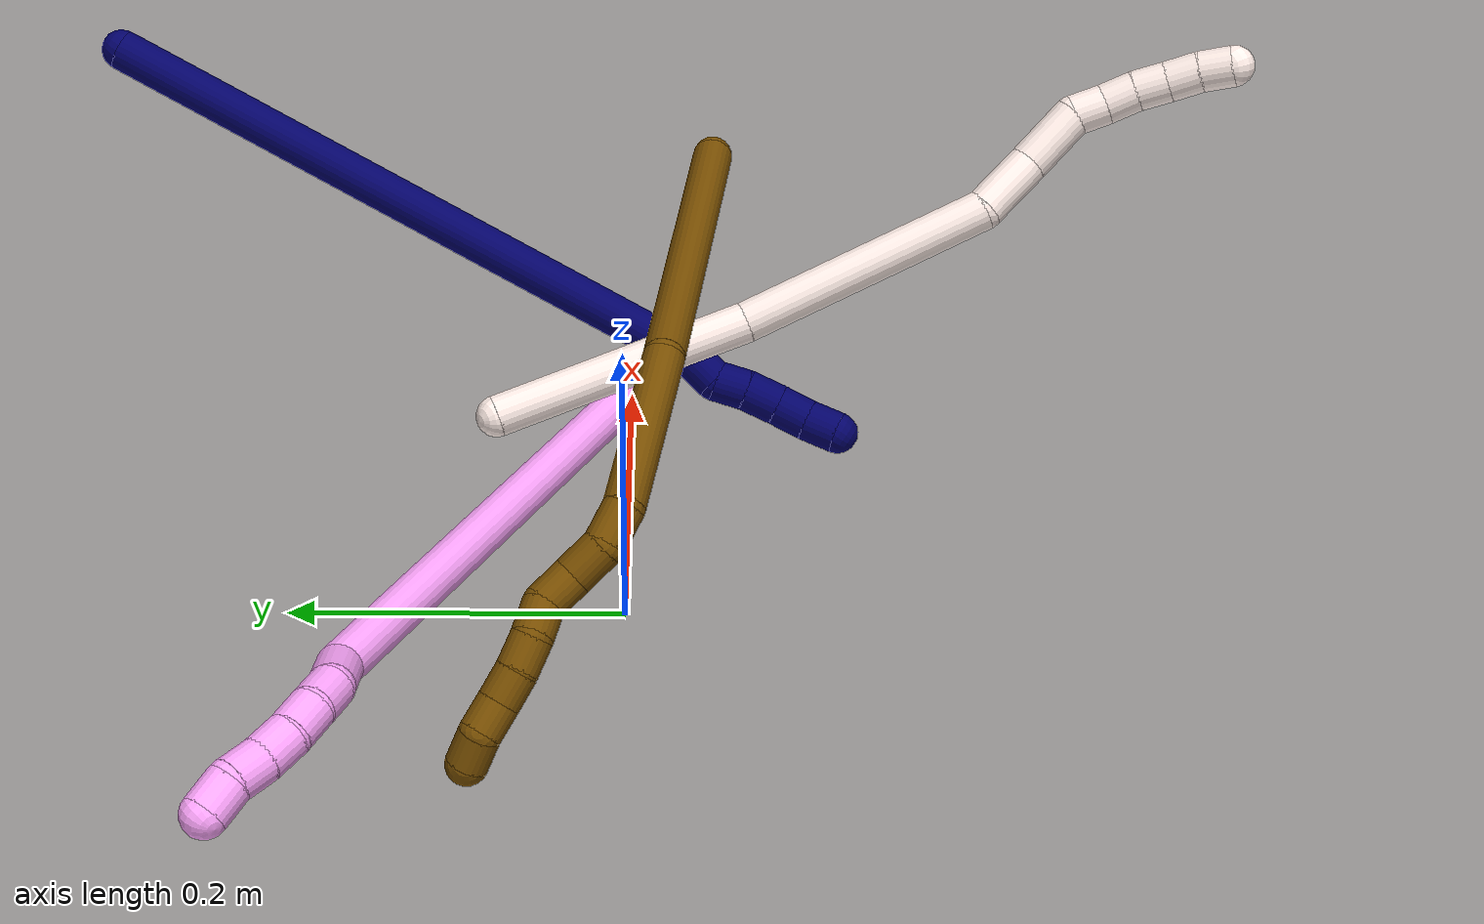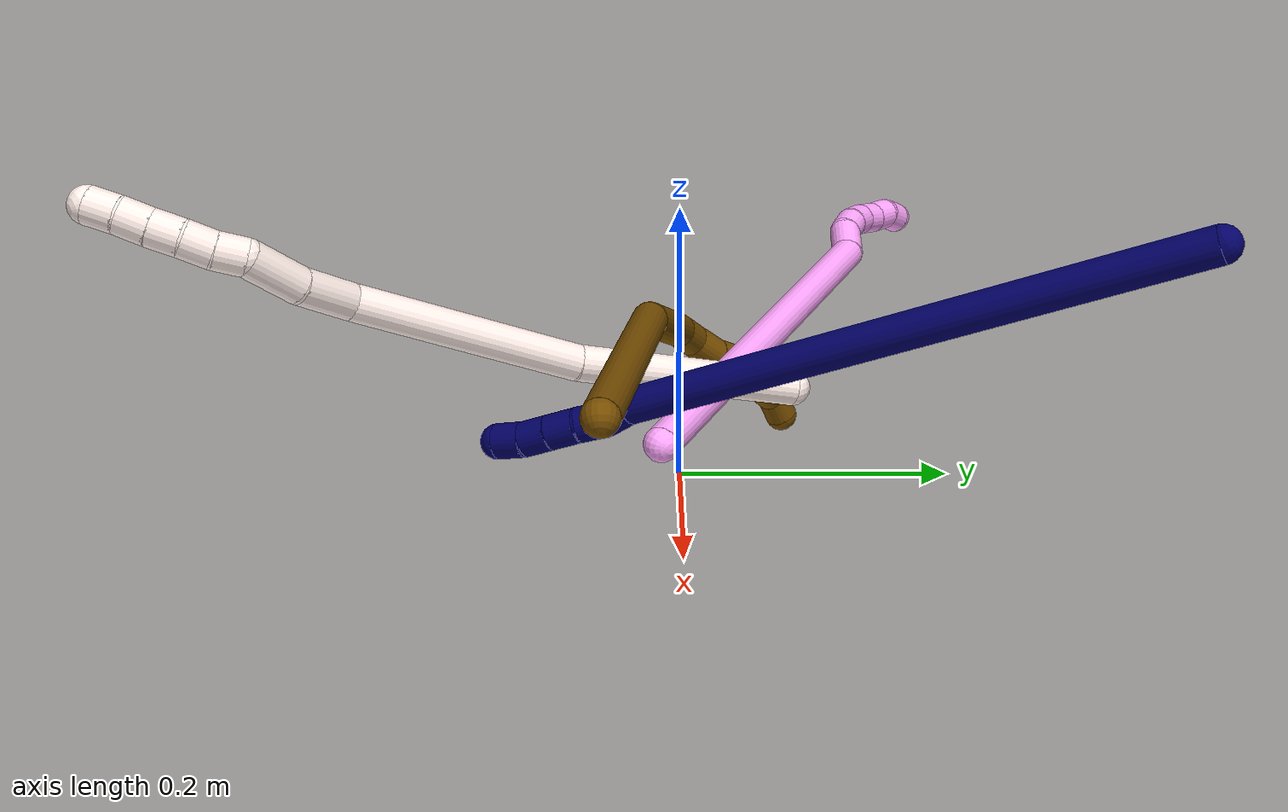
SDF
<sdf version="1.7">
 <world name="default">
  <model name="4">
   <static>0</static>
   <link name="4">
    <collision name="collision-cylinder-e_1_1_4">
     <pose>-0.067481 0.141291 0.096563 -0.971274 -0.375594 0.199933</pose>
     <geometry><cylinder><radius>0.0125</radius><length>0.367921</length></cylinder></geometry>
     <surface>
      <friction><ode><mu>1.16</mu><mu2>1.16</mu2><slip1>0</slip1><slip2>0</slip2></ode></friction>
      <contact><ode><kp>1e+06</kp><kd>1</kd><max_vel>0</max_vel><min_depth>0.001</min_depth></ode></contact>
     </surface>
    </collision>
    <visual name="visual-cylinder-e_1_1_4">
     <pose>-0.067481 0.141291 0.096563 -0.971274 -0.375594 0.199933</pose>
     <geometry><cylinder><radius>0.0125</radius><length>0.367921</length></cylinder></geometry>
     <material><ambient>1 0.65098 0.996078 1</ambient></material>
    </visual>
    <collision name="collision-cylinder-e_2_4_5">
     <pose>-0.13468 0.292291 0.204896 -0.689724 0.018542 -0.006661</pose>
     <geometry><cylinder><radius>0.0125</radius><length>0.030519</length></cylinder></geometry>
     <surface>
      <friction><ode><mu>1.16</mu><mu2>1.16</mu2><slip1>0</slip1><slip2>0</slip2></ode></friction>
      <contact><ode><kp>1e+06</kp><kd>1</kd><max_vel>0</max_vel><min_depth>0.001</min_depth></ode></contact>
     </surface>
    </collision>
    <visual name="visual-cylinder-e_2_4_5">
     <pose>-0.13468 0.292291 0.204896 -0.689724 0.018542 -0.006661</pose>
     <geometry><cylinder><radius>0.0125</radius><length>0.030519</length></cylinder></geometry>
     <material><ambient>1 0.65098 0.996078 1</ambient></material>
    </visual>
    <collision name="collision-cylinder-e_3_5_6">
     <pose>-0.13774 0.309759 0.22296 -0.889284 -0.32286 0.154871</pose>
     <geometry><cylinder><radius>0.0125</radius><length>0.021073</length></cylinder></geometry>
     <surface>
      <friction><ode><mu>1.16</mu><mu2>1.16</mu2><slip1>0</slip1><slip2>0</slip2></ode></friction>
      <contact><ode><kp>1e+06</kp><kd>1</kd><max_vel>0</max_vel><min_depth>0.001</min_depth></ode></contact>
     </surface>
    </collision>
    <visual name="visual-cylinder-e_3_5_6">
     <pose>-0.13774 0.309759 0.22296 -0.889284 -0.32286 0.154871</pose>
     <geometry><cylinder><radius>0.0125</radius><length>0.021073</length></cylinder></geometry>
     <material><ambient>1 0.65098 0.996078 1</ambient></material>
    </visual>
    <collision name="collision-cylinder-e_4_6_7">
     <pose>-0.146504 0.324524 0.234344 -0.942511 -0.559465 0.290685</pose>
     <geometry><cylinder><radius>0.0125</radius><length>0.02043</length></cylinder></geometry>
     <surface>
      <friction><ode><mu>1.16</mu><mu2>1.16</mu2><slip1>0</slip1><slip2>0</slip2></ode></friction>
      <contact><ode><kp>1e+06</kp><kd>1</kd><max_vel>0</max_vel><min_depth>0.001</min_depth></ode></contact>
     </surface>
    </collision>
    <visual name="visual-cylinder-e_4_6_7">
     <pose>-0.146504 0.324524 0.234344 -0.942511 -0.559465 0.290685</pose>
     <geometry><cylinder><radius>0.0125</radius><length>0.02043</length></cylinder></geometry>
     <material><ambient>1 0.65098 0.996078 1</ambient></material>
    </visual>
    <collision name="collision-cylinder-e_5_7_8">
     <pose>-0.15821 0.338538 0.242812 -1.12159 -0.679365 0.436806</pose>
     <geometry><cylinder><radius>0.0125</radius><length>0.020005</length></cylinder></geometry>
     <surface>
      <friction><ode><mu>1.16</mu><mu2>1.16</mu2><slip1>0</slip1><slip2>0</slip2></ode></friction>
      <contact><ode><kp>1e+06</kp><kd>1</kd><max_vel>0</max_vel><min_depth>0.001</min_depth></ode></contact>
     </surface>
    </collision>
    <visual name="visual-cylinder-e_5_7_8">
     <pose>-0.15821 0.338538 0.242812 -1.12159 -0.679365 0.436806</pose>
     <geometry><cylinder><radius>0.0125</radius><length>0.020005</length></cylinder></geometry>
     <material><ambient>1 0.65098 0.996078 1</ambient></material>
    </visual>
    <collision name="collision-cylinder-e_6_8_9">
     <pose>-0.169867 0.353471 0.249147 -1.21367 -0.565864 0.398311</pose>
     <geometry><cylinder><radius>0.0125</radius><length>0.020039</length></cylinder></geometry>
     <surface>
      <friction><ode><mu>1.16</mu><mu2>1.16</mu2><slip1>0</slip1><slip2>0</slip2></ode></friction>
      <contact><ode><kp>1e+06</kp><kd>1</kd><max_vel>0</max_vel><min_depth>0.001</min_depth></ode></contact>
     </surface>
    </collision>
    <visual name="visual-cylinder-e_6_8_9">
     <pose>-0.169867 0.353471 0.249147 -1.21367 -0.565864 0.398311</pose>
     <geometry><cylinder><radius>0.0125</radius><length>0.020039</length></cylinder></geometry>
     <material><ambient>1 0.65098 0.996078 1</ambient></material>
    </visual>
    <collision name="collision-cylinder-e_7_9_2">
     <pose>-0.183066 0.366584 0.25556 -0.983244 -0.898186 0.505108</pose>
     <geometry><cylinder><radius>0.0125</radius><length>0.020013</length></cylinder></geometry>
     <surface>
      <friction><ode><mu>1.16</mu><mu2>1.16</mu2><slip1>0</slip1><slip2>0</slip2></ode></friction>
      <contact><ode><kp>1e+06</kp><kd>1</kd><max_vel>0</max_vel><min_depth>0.001</min_depth></ode></contact>
     </surface>
    </collision>
    <visual name="visual-cylinder-e_7_9_2">
     <pose>-0.183066 0.366584 0.25556 -0.983244 -0.898186 0.505108</pose>
     <geometry><cylinder><radius>0.0125</radius><length>0.020013</length></cylinder></geometry>
     <material><ambient>1 0.65098 0.996078 1</ambient></material>
    </visual>
    <collision name="collision-sphere-2">
     <pose>-0.190893 0.371773 0.259016 0 -0 0</pose>
     <geometry><sphere><radius>0.0125</radius></sphere></geometry>
     <surface>
      <friction><ode><mu>1.16</mu><mu2>1.16</mu2><slip1>0</slip1><slip2>0</slip2></ode></friction>
      <contact><ode><kp>1e+06</kp><kd>1</kd><max_vel>0</max_vel><min_depth>0.001</min_depth></ode></contact>
     </surface>
    </collision>
    <visual name="visual-sphere-2">
     <pose>-0.190893 0.371773 0.259016 0 -0 0</pose>
     <geometry><sphere><radius>0.0125</radius></sphere></geometry>
     <material><ambient>1 0.65098 0.996078 1</ambient></material>
    </visual>
    <collision name="collision-sphere-9">
     <pose>-0.175239 0.361395 0.252104 0 -0 0</pose>
     <geometry><sphere><radius>0.0125</radius></sphere></geometry>
     <surface>
      <friction><ode><mu>1.16</mu><mu2>1.16</mu2><slip1>0</slip1><slip2>0</slip2></ode></friction>
      <contact><ode><kp>1e+06</kp><kd>1</kd><max_vel>0</max_vel><min_depth>0.001</min_depth></ode></contact>
     </surface>
    </collision>
    <visual name="visual-sphere-9">
     <pose>-0.175239 0.361395 0.252104 0 -0 0</pose>
     <geometry><sphere><radius>0.0125</radius></sphere></geometry>
     <material><ambient>1 0.65098 0.996078 1</ambient></material>
    </visual>
    <collision name="collision-sphere-4">
     <pose>-0.134963 0.282583 0.193127 0 -0 0</pose>
     <geometry><sphere><radius>0.0125</radius></sphere></geometry>
     <surface>
      <friction><ode><mu>1.16</mu><mu2>1.16</mu2><slip1>0</slip1><slip2>0</slip2></ode></friction>
      <contact><ode><kp>1e+06</kp><kd>1</kd><max_vel>0</max_vel><min_depth>0.001</min_depth></ode></contact>
     </surface>
    </collision>
    <visual name="visual-sphere-4">
     <pose>-0.134963 0.282583 0.193127 0 -0 0</pose>
     <geometry><sphere><radius>0.0125</radius></sphere></geometry>
     <material><ambient>1 0.65098 0.996078 1</ambient></material>
    </visual>
    <collision name="collision-sphere-1">
     <geometry><sphere><radius>0.0125</radius></sphere></geometry>
     <surface>
      <friction><ode><mu>1.16</mu><mu2>1.16</mu2><slip1>0</slip1><slip2>0</slip2></ode></friction>
      <contact><ode><kp>1e+06</kp><kd>1</kd><max_vel>0</max_vel><min_depth>0.001</min_depth></ode></contact>
     </surface>
    </collision>
    <visual name="visual-sphere-1">
     <geometry><sphere><radius>0.0125</radius></sphere></geometry>
     <material><ambient>1 0.65098 0.996078 1</ambient></material>
    </visual>
    <collision name="collision-sphere-8">
     <pose>-0.164495 0.345547 0.246191 0 -0 0</pose>
     <geometry><sphere><radius>0.0125</radius></sphere></geometry>
     <surface>
      <friction><ode><mu>1.16</mu><mu2>1.16</mu2><slip1>0</slip1><slip2>0</slip2></ode></friction>
      <contact><ode><kp>1e+06</kp><kd>1</kd><max_vel>0</max_vel><min_depth>0.001</min_depth></ode></contact>
     </surface>
    </collision>
    <visual name="visual-sphere-8">
     <pose>-0.164495 0.345547 0.246191 0 -0 0</pose>
     <geometry><sphere><radius>0.0125</radius></sphere></geometry>
     <material><ambient>1 0.65098 0.996078 1</ambient></material>
    </visual>
    <collision name="collision-sphere-5">
     <pose>-0.134397 0.301999 0.216666 0 -0 0</pose>
     <geometry><sphere><radius>0.0125</radius></sphere></geometry>
     <surface>
      <friction><ode><mu>1.16</mu><mu2>1.16</mu2><slip1>0</slip1><slip2>0</slip2></ode></friction>
      <contact><ode><kp>1e+06</kp><kd>1</kd><max_vel>0</max_vel><min_depth>0.001</min_depth></ode></contact>
     </surface>
    </collision>
    <visual name="visual-sphere-5">
     <pose>-0.134397 0.301999 0.216666 0 -0 0</pose>
     <geometry><sphere><radius>0.0125</radius></sphere></geometry>
     <material><ambient>1 0.65098 0.996078 1</ambient></material>
    </visual>
    <collision name="collision-sphere-6">
     <pose>-0.141083 0.317519 0.229255 0 -0 0</pose>
     <geometry><sphere><radius>0.0125</radius></sphere></geometry>
     <surface>
      <friction><ode><mu>1.16</mu><mu2>1.16</mu2><slip1>0</slip1><slip2>0</slip2></ode></friction>
      <contact><ode><kp>1e+06</kp><kd>1</kd><max_vel>0</max_vel><min_depth>0.001</min_depth></ode></contact>
     </surface>
    </collision>
    <visual name="visual-sphere-6">
     <pose>-0.141083 0.317519 0.229255 0 -0 0</pose>
     <geometry><sphere><radius>0.0125</radius></sphere></geometry>
     <material><ambient>1 0.65098 0.996078 1</ambient></material>
    </visual>
    <collision name="collision-sphere-7">
     <pose>-0.151926 0.331528 0.239432 0 -0 0</pose>
     <geometry><sphere><radius>0.0125</radius></sphere></geometry>
     <surface>
      <friction><ode><mu>1.16</mu><mu2>1.16</mu2><slip1>0</slip1><slip2>0</slip2></ode></friction>
      <contact><ode><kp>1e+06</kp><kd>1</kd><max_vel>0</max_vel><min_depth>0.001</min_depth></ode></contact>
     </surface>
    </collision>
    <visual name="visual-sphere-7">
     <pose>-0.151926 0.331528 0.239432 0 -0 0</pose>
     <geometry><sphere><radius>0.0125</radius></sphere></geometry>
     <material><ambient>1 0.65098 0.996078 1</ambient></material>
    </visual>
    <inertial>
     <pose>-0.090133 0.190508 0.132463 0 -0 0</pose>
     <mass>0.5</mass>
     <inertia>
      <ixx>0.004563</ixx>
      <ixy>0</ixy>
      <ixz>0</ixz>
      <iyy>0.003362</iyy>
      <iyz>0</iyz>
      <izz>-0.001654</izz>
     </inertia>
    </inertial>
   </link>
   <pose>0.148035 -0.014097 0.0631 1.46481 -0.920083 -0.913384</pose>
  </model>
  <model name="7">
   <static>0</static>
   <link name="7">
    <collision name="collision-cylinder-e_1_1_4">
     <pose>-0.011817 -0.032322 -0.195333 2.97761 -0.059614 -0.696103</pose>
     <geometry><cylinder><radius>0.0125</radius><length>0.396682</length></cylinder></geometry>
     <surface>
      <friction><ode><mu>1.16</mu><mu2>1.16</mu2><slip1>0</slip1><slip2>0</slip2></ode></friction>
      <contact><ode><kp>1e+06</kp><kd>1</kd><max_vel>0</max_vel><min_depth>0.001</min_depth></ode></contact>
     </surface>
    </collision>
    <visual name="visual-cylinder-e_1_1_4">
     <pose>-0.011817 -0.032322 -0.195333 2.97761 -0.059614 -0.696103</pose>
     <geometry><cylinder><radius>0.0125</radius><length>0.396682</length></cylinder></geometry>
     <material><ambient>0.003922 0 0.403922 1</ambient></material>
    </visual>
    <collision name="collision-cylinder-e_2_4_5">
     <pose>-0.025435 -0.063615 -0.401284 -3.04502 -0.167289 2.09584</pose>
     <geometry><cylinder><radius>0.0125</radius><length>0.02164</length></cylinder></geometry>
     <surface>
      <friction><ode><mu>1.16</mu><mu2>1.16</mu2><slip1>0</slip1><slip2>0</slip2></ode></friction>
      <contact><ode><kp>1e+06</kp><kd>1</kd><max_vel>0</max_vel><min_depth>0.001</min_depth></ode></contact>
     </surface>
    </collision>
    <visual name="visual-cylinder-e_2_4_5">
     <pose>-0.025435 -0.063615 -0.401284 -3.04502 -0.167289 2.09584</pose>
     <geometry><cylinder><radius>0.0125</radius><length>0.02164</length></cylinder></geometry>
     <material><ambient>0.003922 0 0.403922 1</ambient></material>
    </visual>
    <collision name="collision-cylinder-e_3_5_6">
     <pose>-0.026113 -0.065459 -0.421438 2.84894 0.112342 0.728977</pose>
     <geometry><cylinder><radius>0.0125</radius><length>0.020041</length></cylinder></geometry>
     <surface>
      <friction><ode><mu>1.16</mu><mu2>1.16</mu2><slip1>0</slip1><slip2>0</slip2></ode></friction>
      <contact><ode><kp>1e+06</kp><kd>1</kd><max_vel>0</max_vel><min_depth>0.001</min_depth></ode></contact>
     </surface>
    </collision>
    <visual name="visual-cylinder-e_3_5_6">
     <pose>-0.026113 -0.065459 -0.421438 2.84894 0.112342 0.728977</pose>
     <geometry><cylinder><radius>0.0125</radius><length>0.020041</length></cylinder></geometry>
     <material><ambient>0.003922 0 0.403922 1</ambient></material>
    </visual>
    <collision name="collision-cylinder-e_4_6_7">
     <pose>-0.024965 -0.070396 -0.4414 2.94618 0.002327 0.023739</pose>
     <geometry><cylinder><radius>0.0125</radius><length>0.021261</length></cylinder></geometry>
     <surface>
      <friction><ode><mu>1.16</mu><mu2>1.16</mu2><slip1>0</slip1><slip2>0</slip2></ode></friction>
      <contact><ode><kp>1e+06</kp><kd>1</kd><max_vel>0</max_vel><min_depth>0.001</min_depth></ode></contact>
     </surface>
    </collision>
    <visual name="visual-cylinder-e_4_6_7">
     <pose>-0.024965 -0.070396 -0.4414 2.94618 0.002327 0.023739</pose>
     <geometry><cylinder><radius>0.0125</radius><length>0.021261</length></cylinder></geometry>
     <material><ambient>0.003922 0 0.403922 1</ambient></material>
    </visual>
    <collision name="collision-cylinder-e_5_7_8">
     <pose>-0.025369 -0.074212 -0.461741 2.96669 -0.042506 -0.475694</pose>
     <geometry><cylinder><radius>0.0125</radius><length>0.020152</length></cylinder></geometry>
     <surface>
      <friction><ode><mu>1.16</mu><mu2>1.16</mu2><slip1>0</slip1><slip2>0</slip2></ode></friction>
      <contact><ode><kp>1e+06</kp><kd>1</kd><max_vel>0</max_vel><min_depth>0.001</min_depth></ode></contact>
     </surface>
    </collision>
    <visual name="visual-cylinder-e_5_7_8">
     <pose>-0.025369 -0.074212 -0.461741 2.96669 -0.042506 -0.475694</pose>
     <geometry><cylinder><radius>0.0125</radius><length>0.020152</length></cylinder></geometry>
     <material><ambient>0.003922 0 0.403922 1</ambient></material>
    </visual>
    <collision name="collision-cylinder-e_6_8_2">
     <pose>-0.027146 -0.079083 -0.481178 2.82509 -0.133768 -0.794808</pose>
     <geometry><cylinder><radius>0.0125</radius><length>0.020225</length></cylinder></geometry>
     <surface>
      <friction><ode><mu>1.16</mu><mu2>1.16</mu2><slip1>0</slip1><slip2>0</slip2></ode></friction>
      <contact><ode><kp>1e+06</kp><kd>1</kd><max_vel>0</max_vel><min_depth>0.001</min_depth></ode></contact>
     </surface>
    </collision>
    <visual name="visual-cylinder-e_6_8_2">
     <pose>-0.027146 -0.079083 -0.481178 2.82509 -0.133768 -0.794808</pose>
     <geometry><cylinder><radius>0.0125</radius><length>0.020225</length></cylinder></geometry>
     <material><ambient>0.003922 0 0.403922 1</ambient></material>
    </visual>
    <collision name="collision-sphere-2">
     <pose>-0.028494 -0.082202 -0.490702 0 -0 0</pose>
     <geometry><sphere><radius>0.0125</radius></sphere></geometry>
     <surface>
      <friction><ode><mu>1.16</mu><mu2>1.16</mu2><slip1>0</slip1><slip2>0</slip2></ode></friction>
      <contact><ode><kp>1e+06</kp><kd>1</kd><max_vel>0</max_vel><min_depth>0.001</min_depth></ode></contact>
     </surface>
    </collision>
    <visual name="visual-sphere-2">
     <pose>-0.028494 -0.082202 -0.490702 0 -0 0</pose>
     <geometry><sphere><radius>0.0125</radius></sphere></geometry>
     <material><ambient>0.003922 0 0.403922 1</ambient></material>
    </visual>
    <collision name="collision-sphere-4">
     <pose>-0.023634 -0.064644 -0.390665 0 -0 0</pose>
     <geometry><sphere><radius>0.0125</radius></sphere></geometry>
     <surface>
      <friction><ode><mu>1.16</mu><mu2>1.16</mu2><slip1>0</slip1><slip2>0</slip2></ode></friction>
      <contact><ode><kp>1e+06</kp><kd>1</kd><max_vel>0</max_vel><min_depth>0.001</min_depth></ode></contact>
     </surface>
    </collision>
    <visual name="visual-sphere-4">
     <pose>-0.023634 -0.064644 -0.390665 0 -0 0</pose>
     <geometry><sphere><radius>0.0125</radius></sphere></geometry>
     <material><ambient>0.003922 0 0.403922 1</ambient></material>
    </visual>
    <collision name="collision-sphere-1">
     <geometry><sphere><radius>0.0125</radius></sphere></geometry>
     <surface>
      <friction><ode><mu>1.16</mu><mu2>1.16</mu2><slip1>0</slip1><slip2>0</slip2></ode></friction>
      <contact><ode><kp>1e+06</kp><kd>1</kd><max_vel>0</max_vel><min_depth>0.001</min_depth></ode></contact>
     </surface>
    </collision>
    <visual name="visual-sphere-1">
     <geometry><sphere><radius>0.0125</radius></sphere></geometry>
     <material><ambient>0.003922 0 0.403922 1</ambient></material>
    </visual>
    <collision name="collision-sphere-8">
     <pose>-0.025797 -0.075963 -0.471654 0 -0 0</pose>
     <geometry><sphere><radius>0.0125</radius></sphere></geometry>
     <surface>
      <friction><ode><mu>1.16</mu><mu2>1.16</mu2><slip1>0</slip1><slip2>0</slip2></ode></friction>
      <contact><ode><kp>1e+06</kp><kd>1</kd><max_vel>0</max_vel><min_depth>0.001</min_depth></ode></contact>
     </surface>
    </collision>
    <visual name="visual-sphere-8">
     <pose>-0.025797 -0.075963 -0.471654 0 -0 0</pose>
     <geometry><sphere><radius>0.0125</radius></sphere></geometry>
     <material><ambient>0.003922 0 0.403922 1</ambient></material>
    </visual>
    <collision name="collision-sphere-5">
     <pose>-0.027237 -0.062586 -0.411903 0 -0 0</pose>
     <geometry><sphere><radius>0.0125</radius></sphere></geometry>
     <surface>
      <friction><ode><mu>1.16</mu><mu2>1.16</mu2><slip1>0</slip1><slip2>0</slip2></ode></friction>
      <contact><ode><kp>1e+06</kp><kd>1</kd><max_vel>0</max_vel><min_depth>0.001</min_depth></ode></contact>
     </surface>
    </collision>
    <visual name="visual-sphere-5">
     <pose>-0.027237 -0.062586 -0.411903 0 -0 0</pose>
     <geometry><sphere><radius>0.0125</radius></sphere></geometry>
     <material><ambient>0.003922 0 0.403922 1</ambient></material>
    </visual>
    <collision name="collision-sphere-6">
     <pose>-0.02499 -0.068332 -0.430972 0 -0 0</pose>
     <geometry><sphere><radius>0.0125</radius></sphere></geometry>
     <surface>
      <friction><ode><mu>1.16</mu><mu2>1.16</mu2><slip1>0</slip1><slip2>0</slip2></ode></friction>
      <contact><ode><kp>1e+06</kp><kd>1</kd><max_vel>0</max_vel><min_depth>0.001</min_depth></ode></contact>
     </surface>
    </collision>
    <visual name="visual-sphere-6">
     <pose>-0.02499 -0.068332 -0.430972 0 -0 0</pose>
     <geometry><sphere><radius>0.0125</radius></sphere></geometry>
     <material><ambient>0.003922 0 0.403922 1</ambient></material>
    </visual>
    <collision name="collision-sphere-7">
     <pose>-0.024941 -0.07246 -0.451827 0 -0 0</pose>
     <geometry><sphere><radius>0.0125</radius></sphere></geometry>
     <surface>
      <friction><ode><mu>1.16</mu><mu2>1.16</mu2><slip1>0</slip1><slip2>0</slip2></ode></friction>
      <contact><ode><kp>1e+06</kp><kd>1</kd><max_vel>0</max_vel><min_depth>0.001</min_depth></ode></contact>
     </surface>
    </collision>
    <visual name="visual-sphere-7">
     <pose>-0.024941 -0.07246 -0.451827 0 -0 0</pose>
     <geometry><sphere><radius>0.0125</radius></sphere></geometry>
     <material><ambient>0.003922 0 0.403922 1</ambient></material>
    </visual>
    <inertial>
     <pose>-0.014705 -0.040203 -0.246071 0 -0 0</pose>
     <mass>0.5</mass>
     <inertia>
      <ixx>0.000659</ixx>
      <ixy>0</ixy>
      <ixz>0</ixz>
      <iyy>-0.007266</iyy>
      <iyz>0</iyz>
      <izz>0.001124</izz>
     </inertia>
    </inertial>
   </link>
   <pose>0.269892 0.313518 0.217353 -1.04551 0.222373 -0.218702</pose>
  </model>
  <model name="11">
   <static>0</static>
   <link name="11">
    <collision name="collision-cylinder-e_1_1_4">
     <pose>0.013582 -0.034928 0.070485 0.460072 0.170977 0.040132</pose>
     <geometry><cylinder><radius>0.0125</radius><length>0.159657</length></cylinder></geometry>
     <surface>
      <friction><ode><mu>1.16</mu><mu2>1.16</mu2><slip1>0</slip1><slip2>0</slip2></ode></friction>
      <contact><ode><kp>1e+06</kp><kd>1</kd><max_vel>0</max_vel><min_depth>0.001</min_depth></ode></contact>
     </surface>
    </collision>
    <visual name="visual-cylinder-e_1_1_4">
     <pose>0.013582 -0.034928 0.070485 0.460072 0.170977 0.040132</pose>
     <geometry><cylinder><radius>0.0125</radius><length>0.159657</length></cylinder></geometry>
     <material><ambient>1 0.933333 0.909804 1</ambient></material>
    </visual>
    <collision name="collision-cylinder-e_2_4_5">
     <pose>0.0379 -0.113987 0.205869 0.597176 0.135947 0.041902</pose>
     <geometry><cylinder><radius>0.0125</radius><length>0.158425</length></cylinder></geometry>
     <surface>
      <friction><ode><mu>1.16</mu><mu2>1.16</mu2><slip1>0</slip1><slip2>0</slip2></ode></friction>
      <contact><ode><kp>1e+06</kp><kd>1</kd><max_vel>0</max_vel><min_depth>0.001</min_depth></ode></contact>
     </surface>
    </collision>
    <visual name="visual-cylinder-e_2_4_5">
     <pose>0.0379 -0.113987 0.205869 0.597176 0.135947 0.041902</pose>
     <geometry><cylinder><radius>0.0125</radius><length>0.158425</length></cylinder></geometry>
     <material><ambient>1 0.933333 0.909804 1</ambient></material>
    </visual>
    <collision name="collision-cylinder-e_3_5_6">
     <pose>0.043287 -0.167425 0.288245 0.489318 -0.263808 -0.066223</pose>
     <geometry><cylinder><radius>0.0125</radius><length>0.041022</length></cylinder></geometry>
     <surface>
      <friction><ode><mu>1.16</mu><mu2>1.16</mu2><slip1>0</slip1><slip2>0</slip2></ode></friction>
      <contact><ode><kp>1e+06</kp><kd>1</kd><max_vel>0</max_vel><min_depth>0.001</min_depth></ode></contact>
     </surface>
    </collision>
    <visual name="visual-cylinder-e_3_5_6">
     <pose>0.043287 -0.167425 0.288245 0.489318 -0.263808 -0.066223</pose>
     <geometry><cylinder><radius>0.0125</radius><length>0.041022</length></cylinder></geometry>
     <material><ambient>1 0.933333 0.909804 1</ambient></material>
    </visual>
    <collision name="collision-cylinder-e_4_6_7">
     <pose>0.033384 -0.189227 0.320989 0.68591 -0.226929 -0.081333</pose>
     <geometry><cylinder><radius>0.0125</radius><length>0.040493</length></cylinder></geometry>
     <surface>
      <friction><ode><mu>1.16</mu><mu2>1.16</mu2><slip1>0</slip1><slip2>0</slip2></ode></friction>
      <contact><ode><kp>1e+06</kp><kd>1</kd><max_vel>0</max_vel><min_depth>0.001</min_depth></ode></contact>
     </surface>
    </collision>
    <visual name="visual-cylinder-e_4_6_7">
     <pose>0.033384 -0.189227 0.320989 0.68591 -0.226929 -0.081333</pose>
     <geometry><cylinder><radius>0.0125</radius><length>0.040493</length></cylinder></geometry>
     <material><ambient>1 0.933333 0.909804 1</ambient></material>
    </visual>
    <collision name="collision-cylinder-e_5_7_8">
     <pose>0.031235 -0.207113 0.344394 0.585016 0.241674 0.073103</pose>
     <geometry><cylinder><radius>0.0125</radius><length>0.020109</length></cylinder></geometry>
     <surface>
      <friction><ode><mu>1.16</mu><mu2>1.16</mu2><slip1>0</slip1><slip2>0</slip2></ode></friction>
      <contact><ode><kp>1e+06</kp><kd>1</kd><max_vel>0</max_vel><min_depth>0.001</min_depth></ode></contact>
     </surface>
    </collision>
    <visual name="visual-cylinder-e_5_7_8">
     <pose>0.031235 -0.207113 0.344394 0.585016 0.241674 0.073103</pose>
     <geometry><cylinder><radius>0.0125</radius><length>0.020109</length></cylinder></geometry>
     <material><ambient>1 0.933333 0.909804 1</ambient></material>
    </visual>
    <collision name="collision-cylinder-e_6_8_9">
     <pose>0.035892 -0.219162 0.359822 0.740221 0.224163 0.087284</pose>
     <geometry><cylinder><radius>0.0125</radius><length>0.020251</length></cylinder></geometry>
     <surface>
      <friction><ode><mu>1.16</mu><mu2>1.16</mu2><slip1>0</slip1><slip2>0</slip2></ode></friction>
      <contact><ode><kp>1e+06</kp><kd>1</kd><max_vel>0</max_vel><min_depth>0.001</min_depth></ode></contact>
     </surface>
    </collision>
    <visual name="visual-cylinder-e_6_8_9">
     <pose>0.035892 -0.219162 0.359822 0.740221 0.224163 0.087284</pose>
     <geometry><cylinder><radius>0.0125</radius><length>0.020251</length></cylinder></geometry>
     <material><ambient>1 0.933333 0.909804 1</ambient></material>
    </visual>
    <collision name="collision-cylinder-e_7_9_10">
     <pose>0.041774 -0.232239 0.373871 0.75946 0.371447 0.149692</pose>
     <geometry><cylinder><radius>0.0125</radius><length>0.020008</length></cylinder></geometry>
     <surface>
      <friction><ode><mu>1.16</mu><mu2>1.16</mu2><slip1>0</slip1><slip2>0</slip2></ode></friction>
      <contact><ode><kp>1e+06</kp><kd>1</kd><max_vel>0</max_vel><min_depth>0.001</min_depth></ode></contact>
     </surface>
    </collision>
    <visual name="visual-cylinder-e_7_9_10">
     <pose>0.041774 -0.232239 0.373871 0.75946 0.371447 0.149692</pose>
     <geometry><cylinder><radius>0.0125</radius><length>0.020008</length></cylinder></geometry>
     <material><ambient>1 0.933333 0.909804 1</ambient></material>
    </visual>
    <collision name="collision-cylinder-e_8_10_11">
     <pose>0.048948 -0.245456 0.387069 0.812649 0.361733 0.157038</pose>
     <geometry><cylinder><radius>0.0125</radius><length>0.020022</length></cylinder></geometry>
     <surface>
      <friction><ode><mu>1.16</mu><mu2>1.16</mu2><slip1>0</slip1><slip2>0</slip2></ode></friction>
      <contact><ode><kp>1e+06</kp><kd>1</kd><max_vel>0</max_vel><min_depth>0.001</min_depth></ode></contact>
     </surface>
    </collision>
    <visual name="visual-cylinder-e_8_10_11">
     <pose>0.048948 -0.245456 0.387069 0.812649 0.361733 0.157038</pose>
     <geometry><cylinder><radius>0.0125</radius><length>0.020022</length></cylinder></geometry>
     <material><ambient>1 0.933333 0.909804 1</ambient></material>
    </visual>
    <collision name="collision-cylinder-e_9_11_2">
     <pose>0.057349 -0.258588 0.39954 0.809642 0.506989 0.221109</pose>
     <geometry><cylinder><radius>0.0125</radius><length>0.020012</length></cylinder></geometry>
     <surface>
      <friction><ode><mu>1.16</mu><mu2>1.16</mu2><slip1>0</slip1><slip2>0</slip2></ode></friction>
      <contact><ode><kp>1e+06</kp><kd>1</kd><max_vel>0</max_vel><min_depth>0.001</min_depth></ode></contact>
     </surface>
    </collision>
    <visual name="visual-cylinder-e_9_11_2">
     <pose>0.057349 -0.258588 0.39954 0.809642 0.506989 0.221109</pose>
     <geometry><cylinder><radius>0.0125</radius><length>0.020012</length></cylinder></geometry>
     <material><ambient>1 0.933333 0.909804 1</ambient></material>
    </visual>
    <collision name="collision-sphere-2">
     <pose>0.062208 -0.264922 0.405574 0 -0 0</pose>
     <geometry><sphere><radius>0.0125</radius></sphere></geometry>
     <surface>
      <friction><ode><mu>1.16</mu><mu2>1.16</mu2><slip1>0</slip1><slip2>0</slip2></ode></friction>
      <contact><ode><kp>1e+06</kp><kd>1</kd><max_vel>0</max_vel><min_depth>0.001</min_depth></ode></contact>
     </surface>
    </collision>
    <visual name="visual-sphere-2">
     <pose>0.062208 -0.264922 0.405574 0 -0 0</pose>
     <geometry><sphere><radius>0.0125</radius></sphere></geometry>
     <material><ambient>1 0.933333 0.909804 1</ambient></material>
    </visual>
    <collision name="collision-sphere-11">
     <pose>0.052491 -0.252255 0.393507 0 -0 0</pose>
     <geometry><sphere><radius>0.0125</radius></sphere></geometry>
     <surface>
      <friction><ode><mu>1.16</mu><mu2>1.16</mu2><slip1>0</slip1><slip2>0</slip2></ode></friction>
      <contact><ode><kp>1e+06</kp><kd>1</kd><max_vel>0</max_vel><min_depth>0.001</min_depth></ode></contact>
     </surface>
    </collision>
    <visual name="visual-sphere-11">
     <pose>0.052491 -0.252255 0.393507 0 -0 0</pose>
     <geometry><sphere><radius>0.0125</radius></sphere></geometry>
     <material><ambient>1 0.933333 0.909804 1</ambient></material>
    </visual>
    <collision name="collision-sphere-10">
     <pose>0.045405 -0.238658 0.380631 0 -0 0</pose>
     <geometry><sphere><radius>0.0125</radius></sphere></geometry>
     <surface>
      <friction><ode><mu>1.16</mu><mu2>1.16</mu2><slip1>0</slip1><slip2>0</slip2></ode></friction>
      <contact><ode><kp>1e+06</kp><kd>1</kd><max_vel>0</max_vel><min_depth>0.001</min_depth></ode></contact>
     </surface>
    </collision>
    <visual name="visual-sphere-10">
     <pose>0.045405 -0.238658 0.380631 0 -0 0</pose>
     <geometry><sphere><radius>0.0125</radius></sphere></geometry>
     <material><ambient>1 0.933333 0.909804 1</ambient></material>
    </visual>
    <collision name="collision-sphere-9">
     <pose>0.038143 -0.225821 0.36711 0 -0 0</pose>
     <geometry><sphere><radius>0.0125</radius></sphere></geometry>
     <surface>
      <friction><ode><mu>1.16</mu><mu2>1.16</mu2><slip1>0</slip1><slip2>0</slip2></ode></friction>
      <contact><ode><kp>1e+06</kp><kd>1</kd><max_vel>0</max_vel><min_depth>0.001</min_depth></ode></contact>
     </surface>
    </collision>
    <visual name="visual-sphere-9">
     <pose>0.038143 -0.225821 0.36711 0 -0 0</pose>
     <geometry><sphere><radius>0.0125</radius></sphere></geometry>
     <material><ambient>1 0.933333 0.909804 1</ambient></material>
    </visual>
    <collision name="collision-sphere-4">
     <pose>0.027165 -0.069856 0.14097 0 -0 0</pose>
     <geometry><sphere><radius>0.0125</radius></sphere></geometry>
     <surface>
      <friction><ode><mu>1.16</mu><mu2>1.16</mu2><slip1>0</slip1><slip2>0</slip2></ode></friction>
      <contact><ode><kp>1e+06</kp><kd>1</kd><max_vel>0</max_vel><min_depth>0.001</min_depth></ode></contact>
     </surface>
    </collision>
    <visual name="visual-sphere-4">
     <pose>0.027165 -0.069856 0.14097 0 -0 0</pose>
     <geometry><sphere><radius>0.0125</radius></sphere></geometry>
     <material><ambient>1 0.933333 0.909804 1</ambient></material>
    </visual>
    <collision name="collision-sphere-1">
     <geometry><sphere><radius>0.0125</radius></sphere></geometry>
     <surface>
      <friction><ode><mu>1.16</mu><mu2>1.16</mu2><slip1>0</slip1><slip2>0</slip2></ode></friction>
      <contact><ode><kp>1e+06</kp><kd>1</kd><max_vel>0</max_vel><min_depth>0.001</min_depth></ode></contact>
     </surface>
    </collision>
    <visual name="visual-sphere-1">
     <geometry><sphere><radius>0.0125</radius></sphere></geometry>
     <material><ambient>1 0.933333 0.909804 1</ambient></material>
    </visual>
    <collision name="collision-sphere-8">
     <pose>0.033641 -0.212504 0.352533 0 -0 0</pose>
     <geometry><sphere><radius>0.0125</radius></sphere></geometry>
     <surface>
      <friction><ode><mu>1.16</mu><mu2>1.16</mu2><slip1>0</slip1><slip2>0</slip2></ode></friction>
      <contact><ode><kp>1e+06</kp><kd>1</kd><max_vel>0</max_vel><min_depth>0.001</min_depth></ode></contact>
     </surface>
    </collision>
    <visual name="visual-sphere-8">
     <pose>0.033641 -0.212504 0.352533 0 -0 0</pose>
     <geometry><sphere><radius>0.0125</radius></sphere></geometry>
     <material><ambient>1 0.933333 0.909804 1</ambient></material>
    </visual>
    <collision name="collision-sphere-5">
     <pose>0.048636 -0.158118 0.270767 0 -0 0</pose>
     <geometry><sphere><radius>0.0125</radius></sphere></geometry>
     <surface>
      <friction><ode><mu>1.16</mu><mu2>1.16</mu2><slip1>0</slip1><slip2>0</slip2></ode></friction>
      <contact><ode><kp>1e+06</kp><kd>1</kd><max_vel>0</max_vel><min_depth>0.001</min_depth></ode></contact>
     </surface>
    </collision>
    <visual name="visual-sphere-5">
     <pose>0.048636 -0.158118 0.270767 0 -0 0</pose>
     <geometry><sphere><radius>0.0125</radius></sphere></geometry>
     <material><ambient>1 0.933333 0.909804 1</ambient></material>
    </visual>
    <collision name="collision-sphere-6">
     <pose>0.037939 -0.176732 0.305723 0 -0 0</pose>
     <geometry><sphere><radius>0.0125</radius></sphere></geometry>
     <surface>
      <friction><ode><mu>1.16</mu><mu2>1.16</mu2><slip1>0</slip1><slip2>0</slip2></ode></friction>
      <contact><ode><kp>1e+06</kp><kd>1</kd><max_vel>0</max_vel><min_depth>0.001</min_depth></ode></contact>
     </surface>
    </collision>
    <visual name="visual-sphere-6">
     <pose>0.037939 -0.176732 0.305723 0 -0 0</pose>
     <geometry><sphere><radius>0.0125</radius></sphere></geometry>
     <material><ambient>1 0.933333 0.909804 1</ambient></material>
    </visual>
    <collision name="collision-sphere-7">
     <pose>0.028829 -0.201722 0.336255 0 -0 0</pose>
     <geometry><sphere><radius>0.0125</radius></sphere></geometry>
     <surface>
      <friction><ode><mu>1.16</mu><mu2>1.16</mu2><slip1>0</slip1><slip2>0</slip2></ode></friction>
      <contact><ode><kp>1e+06</kp><kd>1</kd><max_vel>0</max_vel><min_depth>0.001</min_depth></ode></contact>
     </surface>
    </collision>
    <visual name="visual-sphere-7">
     <pose>0.028829 -0.201722 0.336255 0 -0 0</pose>
     <geometry><sphere><radius>0.0125</radius></sphere></geometry>
     <material><ambient>1 0.933333 0.909804 1</ambient></material>
    </visual>
    <inertial>
     <pose>0.031238 -0.123009 0.212258 0 -0 0</pose>
     <mass>0.5</mass>
     <inertia>
      <ixx>0.000727</ixx>
      <ixy>0</ixy>
      <ixz>0</ixz>
      <iyy>0.000615</iyy>
      <iyz>0</iyz>
      <izz>0.00028</izz>
     </inertia>
    </inertial>
   </link>
   <pose>0.080093 0.077504 0.085592 -1.75081 0.394848 -2.52658</pose>
  </model>
  <model name="12">
   <static>0</static>
   <link name="12">
    <collision name="collision-cylinder-e_1_1_4">
     <pose>-0.05421 0.058693 -0.07644 -2.48678 -0.512383 1.31396</pose>
     <geometry><cylinder><radius>0.0125</radius><length>0.221148</length></cylinder></geometry>
     <surface>
      <friction><ode><mu>1.16</mu><mu2>1.16</mu2><slip1>0</slip1><slip2>0</slip2></ode></friction>
      <contact><ode><kp>1e+06</kp><kd>1</kd><max_vel>0</max_vel><min_depth>0.001</min_depth></ode></contact>
     </surface>
    </collision>
    <visual name="visual-cylinder-e_1_1_4">
     <pose>-0.05421 0.058693 -0.07644 -2.48678 -0.512383 1.31396</pose>
     <geometry><cylinder><radius>0.0125</radius><length>0.221148</length></cylinder></geometry>
     <material><ambient>0.466667 0.301961 0 1</ambient></material>
    </visual>
    <collision name="collision-cylinder-e_2_4_5">
     <pose>-0.142177 0.151809 -0.174429 -2.13009 -0.693489 1.15624</pose>
     <geometry><cylinder><radius>0.0125</radius><length>0.10562</length></cylinder></geometry>
     <surface>
      <friction><ode><mu>1.16</mu><mu2>1.16</mu2><slip1>0</slip1><slip2>0</slip2></ode></friction>
      <contact><ode><kp>1e+06</kp><kd>1</kd><max_vel>0</max_vel><min_depth>0.001</min_depth></ode></contact>
     </surface>
    </collision>
    <visual name="visual-cylinder-e_2_4_5">
     <pose>-0.142177 0.151809 -0.174429 -2.13009 -0.693489 1.15624</pose>
     <geometry><cylinder><radius>0.0125</radius><length>0.10562</length></cylinder></geometry>
     <material><ambient>0.466667 0.301961 0 1</ambient></material>
    </visual>
    <collision name="collision-cylinder-e_3_5_6">
     <pose>-0.186511 0.192977 -0.197794 -1.83386 -0.987184 1.22422</pose>
     <geometry><cylinder><radius>0.0125</radius><length>0.025349</length></cylinder></geometry>
     <surface>
      <friction><ode><mu>1.16</mu><mu2>1.16</mu2><slip1>0</slip1><slip2>0</slip2></ode></friction>
      <contact><ode><kp>1e+06</kp><kd>1</kd><max_vel>0</max_vel><min_depth>0.001</min_depth></ode></contact>
     </surface>
    </collision>
    <visual name="visual-cylinder-e_3_5_6">
     <pose>-0.186511 0.192977 -0.197794 -1.83386 -0.987184 1.22422</pose>
     <geometry><cylinder><radius>0.0125</radius><length>0.025349</length></cylinder></geometry>
     <material><ambient>0.466667 0.301961 0 1</ambient></material>
    </visual>
    <collision name="collision-cylinder-e_4_6_7">
     <pose>-0.208769 0.202464 -0.197575 -0.932637 -1.28637 0.721498</pose>
     <geometry><cylinder><radius>0.0125</radius><length>0.02434</length></cylinder></geometry>
     <surface>
      <friction><ode><mu>1.16</mu><mu2>1.16</mu2><slip1>0</slip1><slip2>0</slip2></ode></friction>
      <contact><ode><kp>1e+06</kp><kd>1</kd><max_vel>0</max_vel><min_depth>0.001</min_depth></ode></contact>
     </surface>
    </collision>
    <visual name="visual-cylinder-e_4_6_7">
     <pose>-0.208769 0.202464 -0.197575 -0.932637 -1.28637 0.721498</pose>
     <geometry><cylinder><radius>0.0125</radius><length>0.02434</length></cylinder></geometry>
     <material><ambient>0.466667 0.301961 0 1</ambient></material>
    </visual>
    <collision name="collision-cylinder-e_5_7_8">
     <pose>-0.231203 0.207987 -0.196868 -2.01605 -1.29181 1.74792</pose>
     <geometry><cylinder><radius>0.0125</radius><length>0.022372</length></cylinder></geometry>
     <surface>
      <friction><ode><mu>1.16</mu><mu2>1.16</mu2><slip1>0</slip1><slip2>0</slip2></ode></friction>
      <contact><ode><kp>1e+06</kp><kd>1</kd><max_vel>0</max_vel><min_depth>0.001</min_depth></ode></contact>
     </surface>
    </collision>
    <visual name="visual-cylinder-e_5_7_8">
     <pose>-0.231203 0.207987 -0.196868 -2.01605 -1.29181 1.74792</pose>
     <geometry><cylinder><radius>0.0125</radius><length>0.022372</length></cylinder></geometry>
     <material><ambient>0.466667 0.301961 0 1</ambient></material>
    </visual>
    <collision name="collision-cylinder-e_6_8_9">
     <pose>-0.249442 0.217314 -0.201258 -2.00849 -0.802897 1.17694</pose>
     <geometry><cylinder><radius>0.0125</radius><length>0.020811</length></cylinder></geometry>
     <surface>
      <friction><ode><mu>1.16</mu><mu2>1.16</mu2><slip1>0</slip1><slip2>0</slip2></ode></friction>
      <contact><ode><kp>1e+06</kp><kd>1</kd><max_vel>0</max_vel><min_depth>0.001</min_depth></ode></contact>
     </surface>
    </collision>
    <visual name="visual-cylinder-e_6_8_9">
     <pose>-0.249442 0.217314 -0.201258 -2.00849 -0.802897 1.17694</pose>
     <geometry><cylinder><radius>0.0125</radius><length>0.020811</length></cylinder></geometry>
     <material><ambient>0.466667 0.301961 0 1</ambient></material>
    </visual>
    <collision name="collision-cylinder-e_7_9_10">
     <pose>-0.265183 0.229815 -0.204388 -1.58203 -0.945869 0.955006</pose>
     <geometry><cylinder><radius>0.0125</radius><length>0.020358</length></cylinder></geometry>
     <surface>
      <friction><ode><mu>1.16</mu><mu2>1.16</mu2><slip1>0</slip1><slip2>0</slip2></ode></friction>
      <contact><ode><kp>1e+06</kp><kd>1</kd><max_vel>0</max_vel><min_depth>0.001</min_depth></ode></contact>
     </surface>
    </collision>
    <visual name="visual-cylinder-e_7_9_10">
     <pose>-0.265183 0.229815 -0.204388 -1.58203 -0.945869 0.955006</pose>
     <geometry><cylinder><radius>0.0125</radius><length>0.020358</length></cylinder></geometry>
     <material><ambient>0.466667 0.301961 0 1</ambient></material>
    </visual>
    <collision name="collision-cylinder-e_8_10_11">
     <pose>-0.282095 0.2407 -0.203585 -1.39609 -1.04645 0.901453</pose>
     <geometry><cylinder><radius>0.0125</radius><length>0.02</length></cylinder></geometry>
     <surface>
      <friction><ode><mu>1.16</mu><mu2>1.16</mu2><slip1>0</slip1><slip2>0</slip2></ode></friction>
      <contact><ode><kp>1e+06</kp><kd>1</kd><max_vel>0</max_vel><min_depth>0.001</min_depth></ode></contact>
     </surface>
    </collision>
    <visual name="visual-cylinder-e_8_10_11">
     <pose>-0.282095 0.2407 -0.203585 -1.39609 -1.04645 0.901453</pose>
     <geometry><cylinder><radius>0.0125</radius><length>0.02</length></cylinder></geometry>
     <material><ambient>0.466667 0.301961 0 1</ambient></material>
    </visual>
    <collision name="collision-cylinder-e_9_11_12">
     <pose>-0.299501 0.250463 -0.203024 -1.63464 -1.06528 1.12202</pose>
     <geometry><cylinder><radius>0.0125</radius><length>0.02</length></cylinder></geometry>
     <surface>
      <friction><ode><mu>1.16</mu><mu2>1.16</mu2><slip1>0</slip1><slip2>0</slip2></ode></friction>
      <contact><ode><kp>1e+06</kp><kd>1</kd><max_vel>0</max_vel><min_depth>0.001</min_depth></ode></contact>
     </surface>
    </collision>
    <visual name="visual-cylinder-e_9_11_12">
     <pose>-0.299501 0.250463 -0.203024 -1.63464 -1.06528 1.12202</pose>
     <geometry><cylinder><radius>0.0125</radius><length>0.02</length></cylinder></geometry>
     <material><ambient>0.466667 0.301961 0 1</ambient></material>
    </visual>
    <collision name="collision-cylinder-e_10_12_2">
     <pose>-0.315584 0.260436 -0.198883 -0.857232 -0.823326 0.393844</pose>
     <geometry><cylinder><radius>0.0125</radius><length>0.020001</length></cylinder></geometry>
     <surface>
      <friction><ode><mu>1.16</mu><mu2>1.16</mu2><slip1>0</slip1><slip2>0</slip2></ode></friction>
      <contact><ode><kp>1e+06</kp><kd>1</kd><max_vel>0</max_vel><min_depth>0.001</min_depth></ode></contact>
     </surface>
    </collision>
    <visual name="visual-cylinder-e_10_12_2">
     <pose>-0.315584 0.260436 -0.198883 -0.857232 -0.823326 0.393844</pose>
     <geometry><cylinder><radius>0.0125</radius><length>0.020001</length></cylinder></geometry>
     <material><ambient>0.466667 0.301961 0 1</ambient></material>
    </visual>
    <collision name="collision-sphere-2">
     <pose>-0.322919 0.265575 -0.194434 0 -0 0</pose>
     <geometry><sphere><radius>0.0125</radius></sphere></geometry>
     <surface>
      <friction><ode><mu>1.16</mu><mu2>1.16</mu2><slip1>0</slip1><slip2>0</slip2></ode></friction>
      <contact><ode><kp>1e+06</kp><kd>1</kd><max_vel>0</max_vel><min_depth>0.001</min_depth></ode></contact>
     </surface>
    </collision>
    <visual name="visual-sphere-2">
     <pose>-0.322919 0.265575 -0.194434 0 -0 0</pose>
     <geometry><sphere><radius>0.0125</radius></sphere></geometry>
     <material><ambient>0.466667 0.301961 0 1</ambient></material>
    </visual>
    <collision name="collision-sphere-12">
     <pose>-0.30825 0.255296 -0.203333 0 -0 0</pose>
     <geometry><sphere><radius>0.0125</radius></sphere></geometry>
     <surface>
      <friction><ode><mu>1.16</mu><mu2>1.16</mu2><slip1>0</slip1><slip2>0</slip2></ode></friction>
      <contact><ode><kp>1e+06</kp><kd>1</kd><max_vel>0</max_vel><min_depth>0.001</min_depth></ode></contact>
     </surface>
    </collision>
    <visual name="visual-sphere-12">
     <pose>-0.30825 0.255296 -0.203333 0 -0 0</pose>
     <geometry><sphere><radius>0.0125</radius></sphere></geometry>
     <material><ambient>0.466667 0.301961 0 1</ambient></material>
    </visual>
    <collision name="collision-sphere-11">
     <pose>-0.290751 0.245631 -0.202715 0 -0 0</pose>
     <geometry><sphere><radius>0.0125</radius></sphere></geometry>
     <surface>
      <friction><ode><mu>1.16</mu><mu2>1.16</mu2><slip1>0</slip1><slip2>0</slip2></ode></friction>
      <contact><ode><kp>1e+06</kp><kd>1</kd><max_vel>0</max_vel><min_depth>0.001</min_depth></ode></contact>
     </surface>
    </collision>
    <visual name="visual-sphere-11">
     <pose>-0.290751 0.245631 -0.202715 0 -0 0</pose>
     <geometry><sphere><radius>0.0125</radius></sphere></geometry>
     <material><ambient>0.466667 0.301961 0 1</ambient></material>
    </visual>
    <collision name="collision-sphere-10">
     <pose>-0.273438 0.23577 -0.204455 0 -0 0</pose>
     <geometry><sphere><radius>0.0125</radius></sphere></geometry>
     <surface>
      <friction><ode><mu>1.16</mu><mu2>1.16</mu2><slip1>0</slip1><slip2>0</slip2></ode></friction>
      <contact><ode><kp>1e+06</kp><kd>1</kd><max_vel>0</max_vel><min_depth>0.001</min_depth></ode></contact>
     </surface>
    </collision>
    <visual name="visual-sphere-10">
     <pose>-0.273438 0.23577 -0.204455 0 -0 0</pose>
     <geometry><sphere><radius>0.0125</radius></sphere></geometry>
     <material><ambient>0.466667 0.301961 0 1</ambient></material>
    </visual>
    <collision name="collision-sphere-9">
     <pose>-0.256928 0.22386 -0.204322 0 -0 0</pose>
     <geometry><sphere><radius>0.0125</radius></sphere></geometry>
     <surface>
      <friction><ode><mu>1.16</mu><mu2>1.16</mu2><slip1>0</slip1><slip2>0</slip2></ode></friction>
      <contact><ode><kp>1e+06</kp><kd>1</kd><max_vel>0</max_vel><min_depth>0.001</min_depth></ode></contact>
     </surface>
    </collision>
    <visual name="visual-sphere-9">
     <pose>-0.256928 0.22386 -0.204322 0 -0 0</pose>
     <geometry><sphere><radius>0.0125</radius></sphere></geometry>
     <material><ambient>0.466667 0.301961 0 1</ambient></material>
    </visual>
    <collision name="collision-sphere-4">
     <pose>-0.108419 0.117385 -0.152881 0 -0 0</pose>
     <geometry><sphere><radius>0.0125</radius></sphere></geometry>
     <surface>
      <friction><ode><mu>1.16</mu><mu2>1.16</mu2><slip1>0</slip1><slip2>0</slip2></ode></friction>
      <contact><ode><kp>1e+06</kp><kd>1</kd><max_vel>0</max_vel><min_depth>0.001</min_depth></ode></contact>
     </surface>
    </collision>
    <visual name="visual-sphere-4">
     <pose>-0.108419 0.117385 -0.152881 0 -0 0</pose>
     <geometry><sphere><radius>0.0125</radius></sphere></geometry>
     <material><ambient>0.466667 0.301961 0 1</ambient></material>
    </visual>
    <collision name="collision-sphere-1">
     <geometry><sphere><radius>0.0125</radius></sphere></geometry>
     <surface>
      <friction><ode><mu>1.16</mu><mu2>1.16</mu2><slip1>0</slip1><slip2>0</slip2></ode></friction>
      <contact><ode><kp>1e+06</kp><kd>1</kd><max_vel>0</max_vel><min_depth>0.001</min_depth></ode></contact>
     </surface>
    </collision>
    <visual name="visual-sphere-1">
     <geometry><sphere><radius>0.0125</radius></sphere></geometry>
     <material><ambient>0.466667 0.301961 0 1</ambient></material>
    </visual>
    <collision name="collision-sphere-8">
     <pose>-0.241957 0.210767 -0.198194 0 -0 0</pose>
     <geometry><sphere><radius>0.0125</radius></sphere></geometry>
     <surface>
      <friction><ode><mu>1.16</mu><mu2>1.16</mu2><slip1>0</slip1><slip2>0</slip2></ode></friction>
      <contact><ode><kp>1e+06</kp><kd>1</kd><max_vel>0</max_vel><min_depth>0.001</min_depth></ode></contact>
     </surface>
    </collision>
    <visual name="visual-sphere-8">
     <pose>-0.241957 0.210767 -0.198194 0 -0 0</pose>
     <geometry><sphere><radius>0.0125</radius></sphere></geometry>
     <material><ambient>0.466667 0.301961 0 1</ambient></material>
    </visual>
    <collision name="collision-sphere-5">
     <pose>-0.175934 0.186233 -0.195977 0 -0 0</pose>
     <geometry><sphere><radius>0.0125</radius></sphere></geometry>
     <surface>
      <friction><ode><mu>1.16</mu><mu2>1.16</mu2><slip1>0</slip1><slip2>0</slip2></ode></friction>
      <contact><ode><kp>1e+06</kp><kd>1</kd><max_vel>0</max_vel><min_depth>0.001</min_depth></ode></contact>
     </surface>
    </collision>
    <visual name="visual-sphere-5">
     <pose>-0.175934 0.186233 -0.195977 0 -0 0</pose>
     <geometry><sphere><radius>0.0125</radius></sphere></geometry>
     <material><ambient>0.466667 0.301961 0 1</ambient></material>
    </visual>
    <collision name="collision-sphere-6">
     <pose>-0.197088 0.199721 -0.19961 0 -0 0</pose>
     <geometry><sphere><radius>0.0125</radius></sphere></geometry>
     <surface>
      <friction><ode><mu>1.16</mu><mu2>1.16</mu2><slip1>0</slip1><slip2>0</slip2></ode></friction>
      <contact><ode><kp>1e+06</kp><kd>1</kd><max_vel>0</max_vel><min_depth>0.001</min_depth></ode></contact>
     </surface>
    </collision>
    <visual name="visual-sphere-6">
     <pose>-0.197088 0.199721 -0.19961 0 -0 0</pose>
     <geometry><sphere><radius>0.0125</radius></sphere></geometry>
     <material><ambient>0.466667 0.301961 0 1</ambient></material>
    </visual>
    <collision name="collision-sphere-7">
     <pose>-0.22045 0.205207 -0.195541 0 -0 0</pose>
     <geometry><sphere><radius>0.0125</radius></sphere></geometry>
     <surface>
      <friction><ode><mu>1.16</mu><mu2>1.16</mu2><slip1>0</slip1><slip2>0</slip2></ode></friction>
      <contact><ode><kp>1e+06</kp><kd>1</kd><max_vel>0</max_vel><min_depth>0.001</min_depth></ode></contact>
     </surface>
    </collision>
    <visual name="visual-sphere-7">
     <pose>-0.22045 0.205207 -0.195541 0 -0 0</pose>
     <geometry><sphere><radius>0.0125</radius></sphere></geometry>
     <material><ambient>0.466667 0.301961 0 1</ambient></material>
    </visual>
    <inertial>
     <pose>-0.141041 0.13544 -0.140029 0 -0 0</pose>
     <mass>0.5</mass>
     <inertia>
      <ixx>0.001056</ixx>
      <ixy>0</ixy>
      <ixz>0</ixz>
      <iyy>0.000984</iyy>
      <iyz>0</iyz>
      <izz>-4.8e-05</izz>
     </inertia>
    </inertial>
   </link>
   <pose>0.297767 -0.050764 0.119811 -2.4934 -0.322166 -1.13208</pose>
  </model>
 </world>
</sdf>
